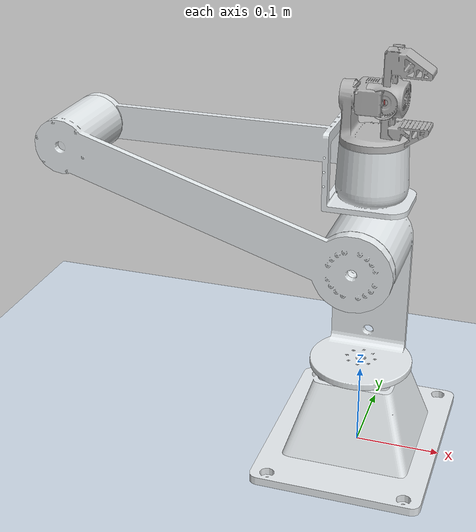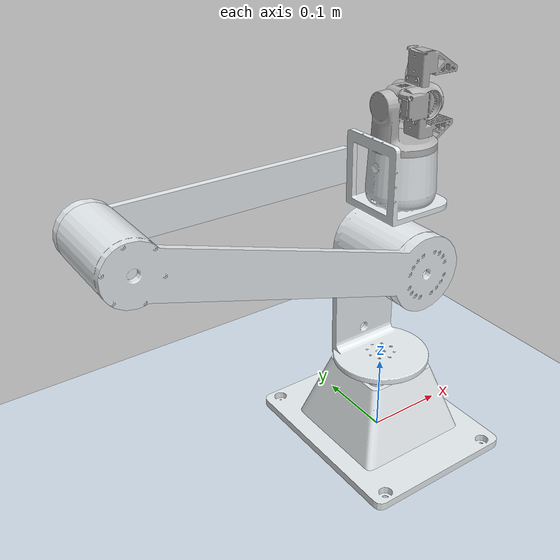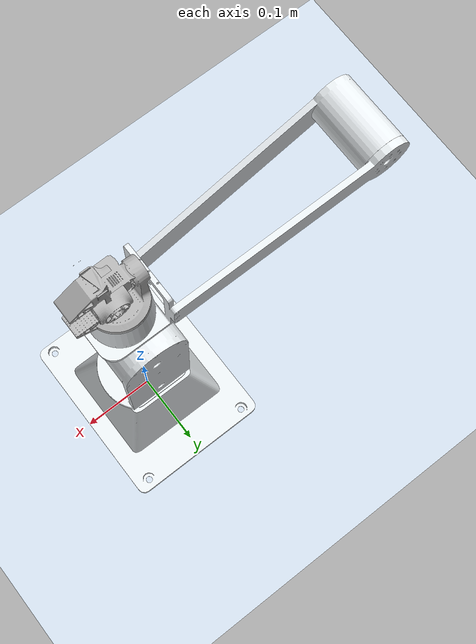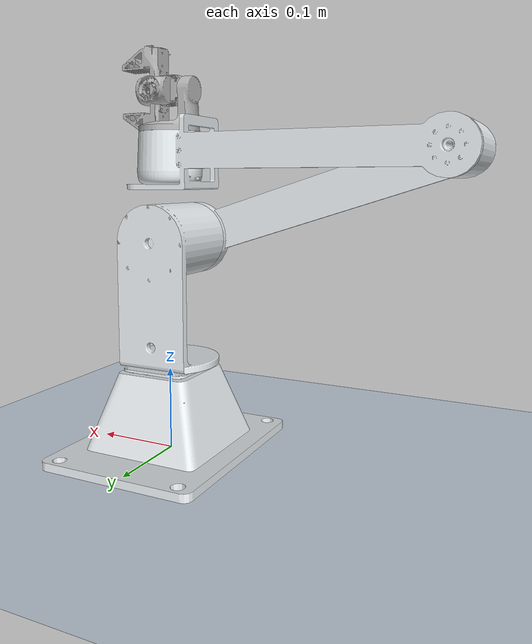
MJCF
<mujoco model="eMeetArm">
  <!-- eulerseq XYZ = intrinsic roll-pitch-yaw, matches URDF rpy convention -->
  <compiler meshdir="../meshes" eulerseq="XYZ" angle="radian"/>

  <option timestep="0.002" gravity="0 0 -9.81" integrator="implicitfast"/>

  <visual>
    <headlight diffuse="0.8 0.8 0.8" ambient="0.3 0.3 0.3" specular="0.0 0.0 0.0"/>
    <rgba haze="0.15 0.25 0.35 1"/>
  </visual>

  <asset>
    <mesh name="base_link" file="base_link.STL"/>
    <mesh name="Link1"     file="Link1.STL"/>
    <mesh name="Link2"     file="Link2.STL"/>
    <mesh name="Link3"     file="Link3.STL"/>
    <mesh name="Link4"     file="Link4.STL"/>
    <mesh name="Link5"     file="Link5.STL"/>
    <mesh name="Link6"     file="Link6.STL"/>
    <material name="arm_grey"   rgba="0.898 0.918 0.929 1"/>
    <material name="joint_grey" rgba="0.698 0.698 0.698 1"/>
  </asset>

  <default>
    <!-- Robot geoms: visual only, no collision with floor or each other -->
    <geom contype="0" conaffinity="0"/>
    <joint limited="true"/>
  </default>

  <worldbody>
    <light name="top"  pos="0 0 2.5" dir="0 0 -1" diffuse="0.8 0.8 0.8" specular="0.2 0.2 0.2"/>
    <light name="side" pos="1 1 1.5" dir="-1 -1 -1" diffuse="0.4 0.4 0.4"/>
    <geom name="floor" type="plane" size="2 2 0.1" rgba="0.8 0.85 0.9 1" contype="1" conaffinity="1"/>

    <!-- base_link: fixed to world (no joint) -->
    <body name="base_link" pos="0 0 0">
      <inertial pos="-1.265e-05 -1.574e-05 0.04528" mass="2.9887"
                fullinertia="0.013686 0.011278 0.022318 6.69e-07 -3.086e-07 -2.269e-07"/>
      <geom type="mesh" mesh="base_link" material="arm_grey"/>

      <!-- Link1: Joint1 — Z-axis rotation, base rotation -->
      <body name="Link1" pos="0 0 0.1078" euler="0 0 0">
        <inertial pos="-7.439e-05 -0.00743 0.12877" mass="2.3582"
                  fullinertia="0.003838 0.004658 0.002214 7.014e-07 -3.092e-06 -5.300e-04"/>
        <joint name="Joint1" type="hinge" axis="0 0 1" range="-3.1 3.1" damping="1.0"/>
        <geom type="mesh" mesh="Link1" material="arm_grey"/>

        <!-- Link2: Joint2 — shoulder pitch -->
        <body name="Link2" pos="0 -0.0625 0.1502" euler="1.5708 -0.30769 -3.1416">
          <inertial pos="0.26233 -2.301e-05 0.02928" mass="1.2359"
                    fullinertia="5.211e-04 0.008365 0.008513 1.665e-07 1.289e-05 -2.828e-07"/>
          <joint name="Joint2" type="hinge" axis="0 0 1" range="-0.8 3.14" damping="5.0"/>
          <geom type="mesh" mesh="Link2" material="arm_grey"/>

          <!-- Link3: Joint3 — elbow -->
          <body name="Link3" pos="0.35 0 0.089" euler="0 0 2.8339">
            <inertial pos="0.25099 0.00809 -0.02224" mass="0.7526"
                      fullinertia="4.253e-04 0.003230 0.003197 -5.617e-05 -1.500e-06 -5.251e-07"/>
            <joint name="Joint3" type="hinge" axis="0 0 1" range="-3.14 0.05" damping="3.0"/>
            <geom type="mesh" mesh="Link3" material="arm_grey"/>

            <!-- Link4: Joint4 — wrist roll -->
            <body name="Link4" pos="0.339 -0.024975 -0.04" euler="1.5708 0 0">
              <inertial pos="-0.01013 -9.437e-06 0.01831" mass="0.09684"
                        fullinertia="3.907e-05 4.727e-05 5.037e-05 -7.031e-09 1.317e-05 -4.242e-09"/>
              <joint name="Joint4" type="hinge" axis="0 0 -1" range="-3.1 3.1" damping="0.5"/>
              <geom type="mesh" mesh="Link4" material="joint_grey"/>

              <!-- Link5: Joint5 — wrist pitch -->
              <body name="Link5" pos="-0.022739 0 0.048353" euler="-1.5708 0 -1.5708">
                <inertial pos="0.001264 1.062e-04 0.02105" mass="0.04532"
                          fullinertia="9.660e-06 1.308e-05 8.920e-06 4.202e-08 1.664e-06 -8.577e-08"/>
                <joint name="Joint5" type="hinge" axis="0 0 1" range="-0.7854 0.7854" damping="0.5"/>
                <geom type="mesh" mesh="Link5" material="joint_grey"/>

                <!-- Link6: Joint6 — wrist yaw -->
                <body name="Link6" pos="0 0 0.03484" euler="3.1416 -1.5708 0">
                  <inertial pos="-3.918e-04 -5.109e-05 8.727e-05" mass="0.05505"
                            fullinertia="1.975e-05 1.676e-05 1.076e-05 2.973e-08 -3.399e-08 -1.342e-07"/>
                  <joint name="Joint6" type="hinge" axis="0 0 -1" range="-1.5 0.5" damping="0.5"/>
                  <geom type="mesh" mesh="Link6" material="joint_grey"/>

                  <!-- tool0: end-effector frame (fixed, no joint) -->
                  <body name="tool0" pos="0 0 0">
                    <site name="ee_site" pos="0 0 0" size="0.01" rgba="1 0 0 0.5"/>
                    <!-- ee_cam: matches URDF camera_optical_joint rpy="0 -π/2 π" from tool0 -->
                    <camera name="ee_cam" pos="0 0 0" euler="0 -1.5708 3.1416"/>
                  </body>
                </body>
              </body>
            </body>
          </body>
        </body>
      </body>
    </body>
  </worldbody>

  <!--
    Position actuators: force = kp*(ctrl - qpos).
    kp tuned proportional to URDF effort limits.
    Joint damping provides velocity feedback.
  -->
  <actuator>
    <position name="act_Joint1" joint="Joint1" kp="500"/>
    <position name="act_Joint2" joint="Joint2" kp="800"/>
    <position name="act_Joint3" joint="Joint3" kp="300"/>
    <position name="act_Joint4" joint="Joint4" kp="80"/>
    <position name="act_Joint5" joint="Joint5" kp="50"/>
    <position name="act_Joint6" joint="Joint6" kp="50"/>
  </actuator>

</mujoco>
